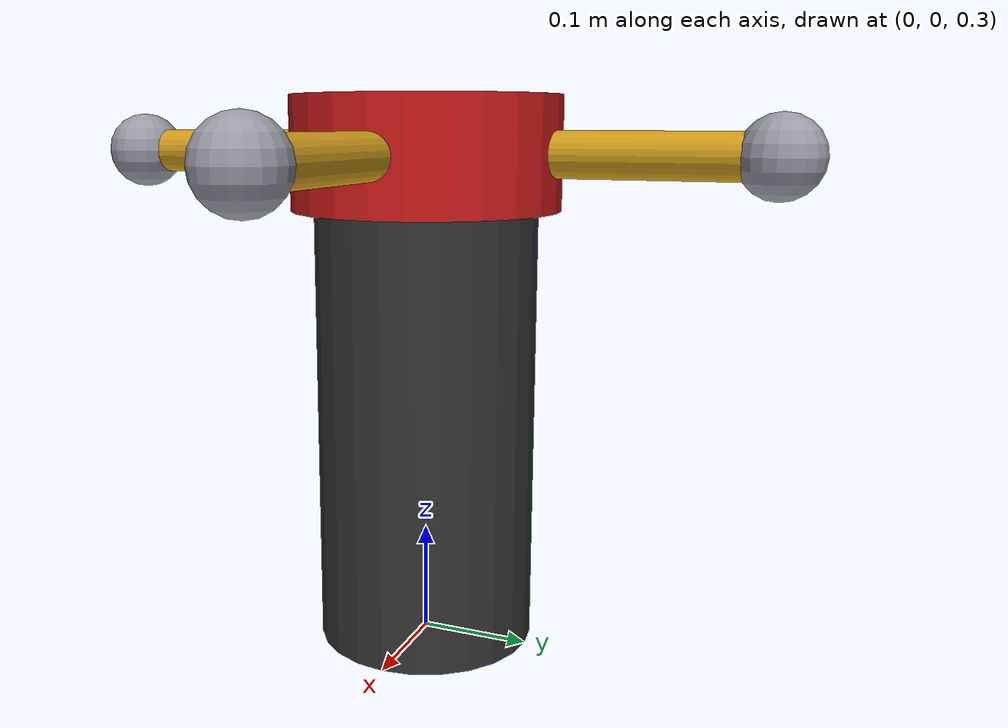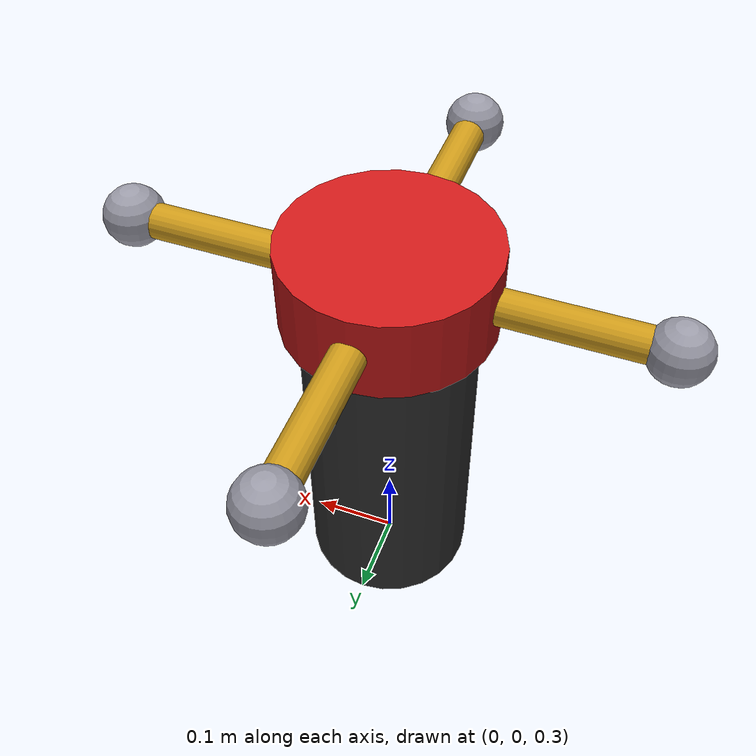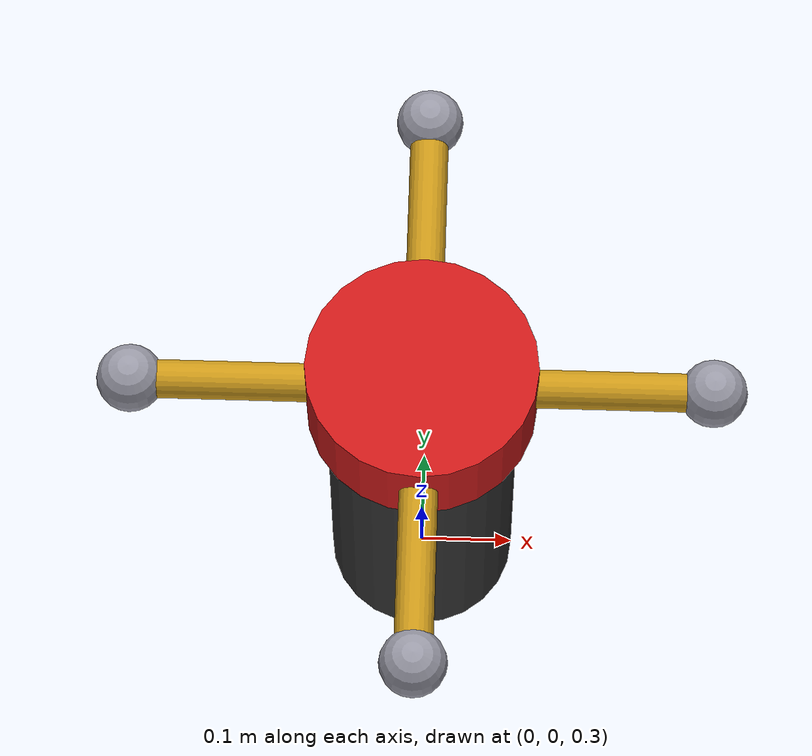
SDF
<?xml version="1.0" ?>
<sdf version="1.8">
  <model name="dwarf_interceptor">
    <pose>0 0 0.5 0 0 0</pose>
    <self_collide>false</self_collide>

    <!-- ================= BODY ================= -->
    <link name="base_link">
      <inertial>
        <mass>2.0</mass>
        <inertia>
          <ixx>0.03167</ixx><iyy>0.03167</iyy><izz>0.01</izz>
          <ixy>0</ixy><ixz>0</ixz><iyz>0</iyz>
        </inertia>
      </inertial>
      <visual name="base_visual">
        <geometry><cylinder><radius>0.1</radius><length>0.4</length></cylinder></geometry>
        <material><ambient>0.2 0.2 0.2 1</ambient><diffuse>0.2 0.2 0.2 1</diffuse></material>
      </visual>
      <collision name="base_collision">
        <geometry><cylinder><radius>0.1</radius><length>0.4</length></cylinder></geometry>
      </collision>
      <!-- body contact sensor: LIVES IN base_link, references base_collision -->
      <sensor name="body_contact" type="contact">
        <contact>
          <collision>base_collision</collision>
          <topic>/dwarf_interceptor/body/contact</topic>
        </contact>
        <always_on>true</always_on>
        <update_rate>1000</update_rate>
      </sensor>
    </link>

    <!-- ================= SPINNING HUB ================= -->
    <link name="hub_link">
      <pose>0 0 0.25 0 0 0</pose>
      <inertial>
        <mass>0.5</mass>
        <inertia>
          <ixx>0.00222</ixx><iyy>0.00222</iyy><izz>0.0036</izz>
          <ixy>0</ixy><ixz>0</ixz><iyz>0</iyz>
        </inertia>
      </inertial>
      <visual name="hub_visual">
        <geometry><cylinder><radius>0.12</radius><length>0.1</length></cylinder></geometry>
        <material><ambient>0.8 0.1 0.1 1</ambient><diffuse>0.8 0.1 0.1 1</diffuse></material>
      </visual>
      <collision name="hub_collision">
        <geometry><cylinder><radius>0.12</radius><length>0.1</length></cylinder></geometry>
      </collision>
    </link>

    <joint name="spin_joint" type="revolute">
      <parent>base_link</parent>
      <child>hub_link</child>
      <axis>
        <xyz>0 0 1</xyz>
        <limit>
          <lower>-1e16</lower><upper>1e16</upper>
          <effort>50</effort>
          <velocity>900</velocity>
        </limit>
        <dynamics><damping>0.005</damping><friction>0.01</friction></dynamics>
      </axis>
    </joint>

    <!-- ================= FLAIL ARMS (x4) ================= -->
    <!-- ARM 1: +X -->
    <link name="arm_1">
      <pose>0.15 0 0.25 0 0 0</pose>
      <inertial>
        <pose>0.075 0 0 0 0 0</pose>
        <mass>0.3</mass>
        <inertia>
          <ixx>0.00006</ixx><iyy>0.0027</iyy><izz>0.0027</izz>
          <ixy>0</ixy><ixz>0</ixz><iyz>0</iyz>
        </inertia>
      </inertial>
      <visual name="arm_1_visual">
        <pose>0 0 0 0 1.5708 0</pose>
        <geometry><cylinder><radius>0.02</radius><length>0.3</length></cylinder></geometry>
        <material><ambient>0.8 0.6 0.1 1</ambient><diffuse>0.8 0.6 0.1 1</diffuse></material>
      </visual>
      <visual name="arm_1_tip_visual">
        <pose>0.15 0 0 0 0 0</pose>
        <geometry><sphere><radius>0.035</radius></sphere></geometry>
        <material><ambient>0.6 0.6 0.65 1</ambient><diffuse>0.6 0.6 0.65 1</diffuse></material>
      </visual>
      <collision name="arm_1_collision">
        <pose>0 0 0 0 1.5708 0</pose>
        <geometry><cylinder><radius>0.02</radius><length>0.3</length></cylinder></geometry>
      </collision>
      <collision name="arm_1_tip_collision">
        <pose>0.15 0 0 0 0 0</pose>
        <geometry><sphere><radius>0.035</radius></sphere></geometry>
      </collision>
      <!-- RESTORED: arm_1's own contact sensor -->
      <sensor name="arm_1_contact" type="contact">
        <contact>
          <collision>arm_1_collision</collision>
          <collision>arm_1_tip_collision</collision>
          <topic>/dwarf_interceptor/arm_1/contact</topic>
        </contact>
        <always_on>true</always_on>
        <update_rate>1000</update_rate>
      </sensor>
    </link>
    <joint name="deploy_joint_1" type="prismatic">
      <parent>hub_link</parent>
      <child>arm_1</child>
      <axis>
        <xyz>1 0 0</xyz>
        <limit><lower>0</lower><upper>0.25</upper><effort>200</effort></limit>
        <dynamics><damping>2.0</damping><friction>0.5</friction></dynamics>
      </axis>
    </joint>

    <!-- ARM 2: -X -->
    <link name="arm_2">
      <pose>-0.15 0 0.25 0 0 0</pose>
      <inertial>
        <pose>-0.075 0 0 0 0 0</pose>
        <mass>0.3</mass>
        <inertia>
          <ixx>0.00006</ixx><iyy>0.0027</iyy><izz>0.0027</izz>
          <ixy>0</ixy><ixz>0</ixz><iyz>0</iyz>
        </inertia>
      </inertial>
      <visual name="arm_2_visual">
        <pose>0 0 0 0 1.5708 0</pose>
        <geometry><cylinder><radius>0.02</radius><length>0.3</length></cylinder></geometry>
        <material><ambient>0.8 0.6 0.1 1</ambient><diffuse>0.8 0.6 0.1 1</diffuse></material>
      </visual>
      <visual name="arm_2_tip_visual">
        <pose>-0.15 0 0 0 0 0</pose>
        <geometry><sphere><radius>0.035</radius></sphere></geometry>
        <material><ambient>0.6 0.6 0.65 1</ambient><diffuse>0.6 0.6 0.65 1</diffuse></material>
      </visual>
      <collision name="arm_2_collision">
        <pose>0 0 0 0 1.5708 0</pose>
        <geometry><cylinder><radius>0.02</radius><length>0.3</length></cylinder></geometry>
      </collision>
      <collision name="arm_2_tip_collision">
        <pose>-0.15 0 0 0 0 0</pose>
        <geometry><sphere><radius>0.035</radius></sphere></geometry>
      </collision>
      <sensor name="arm_2_contact" type="contact">
        <contact>
          <collision>arm_2_collision</collision>
          <collision>arm_2_tip_collision</collision>
          <topic>/dwarf_interceptor/arm_2/contact</topic>
        </contact>
        <always_on>true</always_on>
        <update_rate>1000</update_rate>
      </sensor>
    </link>
    <joint name="deploy_joint_2" type="prismatic">
      <parent>hub_link</parent>
      <child>arm_2</child>
      <axis>
        <xyz>-1 0 0</xyz>
        <limit><lower>0</lower><upper>0.25</upper><effort>200</effort></limit>
        <dynamics><damping>2.0</damping><friction>0.5</friction></dynamics>
      </axis>
    </joint>

    <!-- ARM 3: +Y -->
    <link name="arm_3">
      <pose>0 0.15 0.25 0 0 0</pose>
      <inertial>
        <pose>0 0.075 0 0 0 0</pose>
        <mass>0.3</mass>
        <inertia>
          <ixx>0.0027</ixx><iyy>0.00006</iyy><izz>0.0027</izz>
          <ixy>0</ixy><ixz>0</ixz><iyz>0</iyz>
        </inertia>
      </inertial>
      <visual name="arm_3_visual">
        <pose>0 0 0 1.5708 0 0</pose>
        <geometry><cylinder><radius>0.02</radius><length>0.3</length></cylinder></geometry>
        <material><ambient>0.8 0.6 0.1 1</ambient><diffuse>0.8 0.6 0.1 1</diffuse></material>
      </visual>
      <visual name="arm_3_tip_visual">
        <pose>0 0.15 0 0 0 0</pose>
        <geometry><sphere><radius>0.035</radius></sphere></geometry>
        <material><ambient>0.6 0.6 0.65 1</ambient><diffuse>0.6 0.6 0.65 1</diffuse></material>
      </visual>
      <collision name="arm_3_collision">
        <pose>0 0 0 1.5708 0 0</pose>
        <geometry><cylinder><radius>0.02</radius><length>0.3</length></cylinder></geometry>
      </collision>
      <collision name="arm_3_tip_collision">
        <pose>0 0.15 0 0 0 0</pose>
        <geometry><sphere><radius>0.035</radius></sphere></geometry>
      </collision>
      <sensor name="arm_3_contact" type="contact">
        <contact>
          <collision>arm_3_collision</collision>
          <collision>arm_3_tip_collision</collision>
          <topic>/dwarf_interceptor/arm_3/contact</topic>
        </contact>
        <always_on>true</always_on>
        <update_rate>1000</update_rate>
      </sensor>
    </link>
    <joint name="deploy_joint_3" type="prismatic">
      <parent>hub_link</parent>
      <child>arm_3</child>
      <axis>
        <xyz>0 1 0</xyz>
        <limit><lower>0</lower><upper>0.25</upper><effort>200</effort></limit>
        <dynamics><damping>2.0</damping><friction>0.5</friction></dynamics>
      </axis>
    </joint>

    <!-- ARM 4: -Y -->
    <link name="arm_4">
      <pose>0 -0.15 0.25 0 0 0</pose>
      <inertial>
        <pose>0 -0.075 0 0 0 0</pose>
        <mass>0.3</mass>
        <inertia>
          <ixx>0.0027</ixx><iyy>0.00006</iyy><izz>0.0027</izz>
          <ixy>0</ixy><ixz>0</ixz><iyz>0</iyz>
        </inertia>
      </inertial>
      <visual name="arm_4_visual">
        <pose>0 0 0 1.5708 0 0</pose>
        <geometry><cylinder><radius>0.02</radius><length>0.3</length></cylinder></geometry>
        <material><ambient>0.8 0.6 0.1 1</ambient><diffuse>0.8 0.6 0.1 1</diffuse></material>
      </visual>
      <visual name="arm_4_tip_visual">
        <pose>0 -0.15 0 0 0 0</pose>
        <geometry><sphere><radius>0.035</radius></sphere></geometry>
        <material><ambient>0.6 0.6 0.65 1</ambient><diffuse>0.6 0.6 0.65 1</diffuse></material>
      </visual>
      <collision name="arm_4_collision">
        <pose>0 0 0 1.5708 0 0</pose>
        <geometry><cylinder><radius>0.02</radius><length>0.3</length></cylinder></geometry>
      </collision>
      <collision name="arm_4_tip_collision">
        <pose>0 -0.15 0 0 0 0</pose>
        <geometry><sphere><radius>0.035</radius></sphere></geometry>
      </collision>
      <sensor name="arm_4_contact" type="contact">
        <contact>
          <collision>arm_4_collision</collision>
          <collision>arm_4_tip_collision</collision>
          <topic>/dwarf_interceptor/arm_4/contact</topic>
        </contact>
        <always_on>true</always_on>
        <update_rate>1000</update_rate>
      </sensor>
    </link>
    <joint name="deploy_joint_4" type="prismatic">
      <parent>hub_link</parent>
      <child>arm_4</child>
      <axis>
        <xyz>0 -1 0</xyz>
        <limit><lower>0</lower><upper>0.25</upper><effort>200</effort></limit>
        <dynamics><damping>2.0</damping><friction>0.5</friction></dynamics>
      </axis>
    </joint>

    <!-- ================= PLUGINS ================= -->
    <plugin filename="gz-sim-joint-state-publisher-system"
            name="gz::sim::systems::JointStatePublisher"/>
    <plugin filename="gz-sim-joint-controller-system"
            name="gz::sim::systems::JointController">
      <joint_name>spin_joint</joint_name>
      <topic>/model/dwarf_interceptor/joint/spin_joint/cmd_vel</topic>
      <use_force_commands>true</use_force_commands>
      <p_gain>0.5</p_gain>
      <i_gain>0.05</i_gain>
    </plugin>
    <plugin filename="gz-sim-odometry-publisher-system"
            name="gz::sim::systems::OdometryPublisher">
      <odom_frame>world</odom_frame>
      <robot_base_frame>base_link</robot_base_frame>
      <odom_publish_frequency>100</odom_publish_frequency>
      <dimensions>3</dimensions>
    </plugin>
    <plugin filename="gz-sim-velocity-control-system"
            name="gz::sim::systems::VelocityControl">
      <topic>/model/dwarf_interceptor/cmd_vel</topic>
    </plugin>
  </model>
</sdf>
